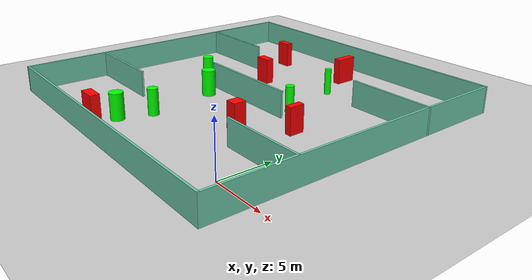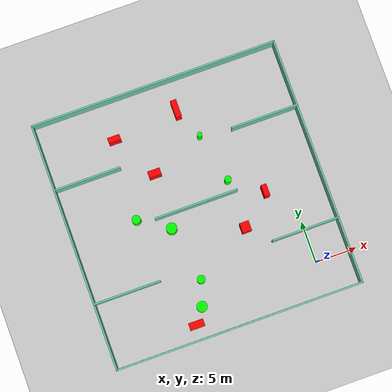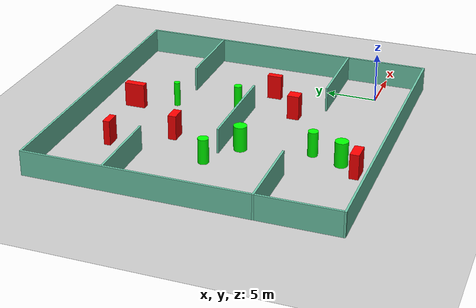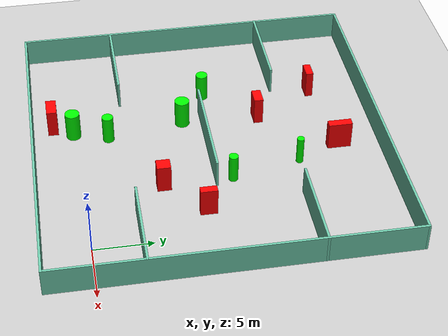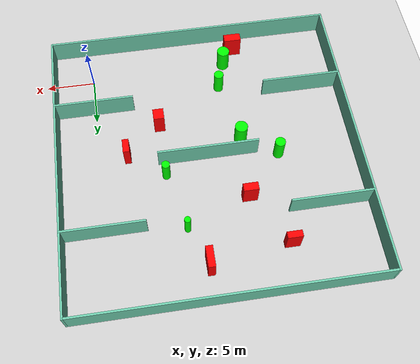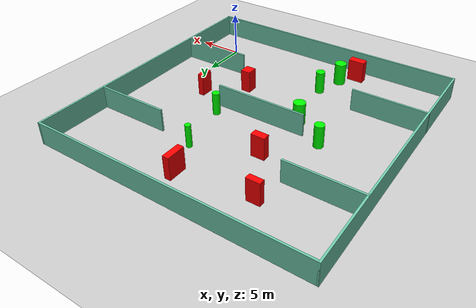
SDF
<sdf version="1.7">
 <world name="default">
  <light name="sun" type="directional">
   <pose>0 0 10 0 -0 0</pose>
   <diffuse>0.8 0.8 0.8 1</diffuse>
   <specular>0.2 0.2 0.2 1</specular>
   <attenuation>
    <range>1000</range>
    <constant>0.9</constant>
    <linear>0.01</linear>
    <quadratic>0.001</quadratic>
   </attenuation>
   <direction>-0.5 0.1 -0.9</direction>
   <spot><inner_angle>0</inner_angle><outer_angle>0</outer_angle><falloff>0</falloff></spot>
  </light>
  <model name="ground_plane">
   <static>1</static>
   <link name="link">
    <collision name="collision">
     <geometry><plane><normal>0 0 1</normal><size>100 100</size></plane></geometry>
     <surface>
      <contact><collide_bitmask>65535</collide_bitmask></contact>
      <friction><ode><mu>100</mu><mu2>50</mu2></ode></friction>
     </surface>
    </collision>
    <visual name="visual">
     <cast_shadows>0</cast_shadows>
     <geometry><plane><normal>0 0 1</normal><size>100 100</size></plane></geometry>
     <material>
      <script><uri>file://media/materials/scripts/gazebo.material</uri><name>Gazebo/Grey</name></script>
     </material>
    </visual>
   </link>
  </model>
  <gravity>0 0 -9.8</gravity>
  <magnetic_field>6e-06 2.3e-05 -4.2e-05</magnetic_field>
  <atmosphere type="adiabatic"/>
  <physics type="ode">
   <max_step_size>0.001</max_step_size>
   <real_time_factor>1</real_time_factor>
   <real_time_update_rate>1000</real_time_update_rate>
  </physics>
  <scene><ambient>0.4 0.4 0.4 1</ambient><background>0.7 0.7 0.7 1</background><shadows>1</shadows></scene>
  <spherical_coordinates>
   <surface_model>EARTH_WGS84</surface_model>
   <latitude_deg>0</latitude_deg>
   <longitude_deg>0</longitude_deg>
   <elevation>0</elevation>
   <heading_deg>0</heading_deg>
  </spherical_coordinates>
  <model name="my_base_walls">
   <link name="Wall_10">
    <collision name="Wall_10_Collision">
     <geometry><box><size>8.2 0.2 2.5</size></box></geometry>
     <pose>0 0 1.25 0 -0 0</pose>
    </collision>
    <visual name="Wall_10_Visual">
     <pose>0 0 1.25 0 -0 0</pose>
     <geometry><box><size>8.2 0.2 2.5</size></box></geometry>
     <material>
      <script><uri>file://media/materials/scripts/gazebo.material</uri><name>Gazebo/Grey</name></script>
      <ambient>0.435294 0.796078 0.67451 1</ambient>
     </material>
     <meta><layer>0</layer></meta>
    </visual>
    <pose>-11 -7 0 0 -0 0</pose>
   </link>
   <link name="Wall_12">
    <collision name="Wall_12_Collision">
     <geometry><box><size>8.2 0.2 2.5</size></box></geometry>
     <pose>0 0 1.25 0 -0 0</pose>
    </collision>
    <visual name="Wall_12_Visual">
     <pose>0 0 1.25 0 -0 0</pose>
     <geometry><box><size>8.2 0.2 2.5</size></box></geometry>
     <material>
      <script><uri>file://media/materials/scripts/gazebo.material</uri><name>Gazebo/Grey</name></script>
      <ambient>0.435294 0.796078 0.67451 1</ambient>
     </material>
     <meta><layer>0</layer></meta>
    </visual>
    <pose>-11 7 0 0 -0 0</pose>
   </link>
   <link name="Wall_14">
    <collision name="Wall_14_Collision">
     <geometry><box><size>8.2 0.2 2.5</size></box></geometry>
     <pose>0 0 1.25 0 -0 0</pose>
    </collision>
    <visual name="Wall_14_Visual">
     <pose>0 0 1.25 0 -0 0</pose>
     <geometry><box><size>8.2 0.2 2.5</size></box></geometry>
     <material>
      <script><uri>file://media/materials/scripts/gazebo.material</uri><name>Gazebo/Grey</name></script>
      <ambient>0.435294 0.796078 0.67451 1</ambient>
     </material>
     <meta><layer>0</layer></meta>
    </visual>
    <pose>11 7 0 0 -0 3.14159</pose>
   </link>
   <link name="Wall_16">
    <collision name="Wall_16_Collision">
     <geometry><box><size>10.2 0.2 2.5</size></box></geometry>
     <pose>0 0 1.25 0 -0 0</pose>
    </collision>
    <visual name="Wall_16_Visual">
     <pose>0 0 1.25 0 -0 0</pose>
     <geometry><box><size>10.2 0.2 2.5</size></box></geometry>
     <material>
      <script><uri>file://media/materials/scripts/gazebo.material</uri><name>Gazebo/Grey</name></script>
      <ambient>0.435294 0.796078 0.67451 1</ambient>
     </material>
     <meta><layer>0</layer></meta>
    </visual>
    <pose>0 0 0 0 -0 3.14159</pose>
   </link>
   <link name="Wall_2">
    <collision name="Wall_2_Collision">
     <geometry><box><size>30.2 0.2 2.5</size></box></geometry>
     <pose>0 0 1.25 0 -0 0</pose>
    </collision>
    <visual name="Wall_2_Visual">
     <pose>0 0 1.25 0 -0 0</pose>
     <geometry><box><size>30.2 0.2 2.5</size></box></geometry>
     <material>
      <script><uri>file://media/materials/scripts/gazebo.material</uri><name>Gazebo/Grey</name></script>
      <ambient>0.435294 0.796078 0.67451 1</ambient>
     </material>
     <meta><layer>0</layer></meta>
    </visual>
    <pose>0 -15 0 0 -0 3.14159</pose>
   </link>
   <link name="Wall_3">
    <collision name="Wall_3_Collision">
     <geometry><box><size>30.2 0.2 2.5</size></box></geometry>
     <pose>0 0 1.25 0 -0 0</pose>
    </collision>
    <visual name="Wall_3_Visual">
     <pose>0 0 1.25 0 -0 0</pose>
     <geometry><box><size>30.2 0.2 2.5</size></box></geometry>
     <material>
      <script><uri>file://media/materials/scripts/gazebo.material</uri><name>Gazebo/Grey</name></script>
      <ambient>0.435294 0.796078 0.67451 1</ambient>
     </material>
     <meta><layer>0</layer></meta>
    </visual>
    <pose>-15 0 0 0 -0 1.5708</pose>
   </link>
   <link name="Wall_4">
    <collision name="Wall_4_Collision">
     <geometry><box><size>30.2 0.2 2.5</size></box></geometry>
     <pose>0 0 1.25 0 -0 0</pose>
    </collision>
    <visual name="Wall_4_Visual">
     <pose>0 0 1.25 0 -0 0</pose>
     <geometry><box><size>30.2 0.2 2.5</size></box></geometry>
     <material>
      <script><uri>file://media/materials/scripts/gazebo.material</uri><name>Gazebo/Grey</name></script>
      <ambient>0.435294 0.796078 0.67451 1</ambient>
     </material>
     <meta><layer>0</layer></meta>
    </visual>
    <pose>0 15 0 0 -0 0</pose>
   </link>
   <link name="Wall_6">
    <collision name="Wall_6_Collision">
     <geometry><box><size>30.2 0.2 2.5</size></box></geometry>
     <pose>0 0 1.25 0 -0 0</pose>
    </collision>
    <visual name="Wall_6_Visual">
     <pose>0 0 1.25 0 -0 0</pose>
     <geometry><box><size>30.2 0.2 2.5</size></box></geometry>
     <material>
      <script><uri>file://media/materials/scripts/gazebo.material</uri><name>Gazebo/Grey</name></script>
      <ambient>0.435294 0.796078 0.67451 1</ambient>
     </material>
     <meta><layer>0</layer></meta>
    </visual>
    <pose>15 0 0 0 -0 1.5708</pose>
   </link>
   <link name="Wall_8">
    <collision name="Wall_8_Collision">
     <geometry><box><size>8.2 0.2 2.5</size></box></geometry>
     <pose>0 0 1.25 0 -0 0</pose>
    </collision>
    <visual name="Wall_8_Visual">
     <pose>0 0 1.25 0 -0 0</pose>
     <geometry><box><size>8.2 0.2 2.5</size></box></geometry>
     <material>
      <script><uri>file://media/materials/scripts/gazebo.material</uri><name>Gazebo/Grey</name></script>
      <ambient>0.435294 0.796078 0.67451 1</ambient>
     </material>
     <meta><layer>0</layer></meta>
    </visual>
    <pose>11 -7 0 0 -0 3.14159</pose>
   </link>
   <static>1</static>
   <pose>-11 11 0 0 -0 0</pose>
  </model>
  <model name="cylinder1">
   <static>1</static>
   <link name="link">
    <inertial>
     <mass>1</mass>
     <inertia><ixx>0.5</ixx><ixy>0</ixy><ixz>0</ixz><iyy>0.5</iyy><iyz>0</iyz><izz>1</izz></inertia>
    </inertial>
    <collision name="collision">
     <geometry><cylinder><radius>0.6405428195331779</radius><length>2.5</length></cylinder></geometry>
    </collision>
    <visual name="visual">
     <geometry><cylinder><radius>0.6405428195331779</radius><length>2.5</length></cylinder></geometry>
     <material>
      <ambient>0 1 0 1</ambient>
      <diffuse>0 1 0 1</diffuse>
      <specular>0.1 0.1 0.1 1</specular>
      <emissive>0 0 0 0</emissive>
     </material>
    </visual>
   </link>
   <pose>-14.359535074035836 -0.42092638623585543 1.25 0 0 0</pose>
  </model>
  <model name="cylinder2">
   <static>1</static>
   <link name="link">
    <inertial>
     <mass>1</mass>
     <inertia><ixx>0.5</ixx><ixy>0</ixy><ixz>0</ixz><iyy>0.5</iyy><iyz>0</iyz><izz>1</izz></inertia>
    </inertial>
    <collision name="collision">
     <geometry><cylinder><radius>0.6471875766967228</radius><length>2.5</length></cylinder></geometry>
    </collision>
    <visual name="visual">
     <geometry><cylinder><radius>0.6471875766967228</radius><length>2.5</length></cylinder></geometry>
     <material>
      <ambient>0 1 0 1</ambient>
      <diffuse>0 1 0 1</diffuse>
      <specular>0.1 0.1 0.1 1</specular>
      <emissive>0 0 0 0</emissive>
     </material>
    </visual>
   </link>
   <pose>-14.633865834970154 9.286482245848264 1.25 0 0 0</pose>
  </model>
  <model name="cylinder3">
   <static>1</static>
   <link name="link">
    <inertial>
     <mass>1</mass>
     <inertia><ixx>0.5</ixx><ixy>0</ixy><ixz>0</ixz><iyy>0.5</iyy><iyz>0</iyz><izz>1</izz></inertia>
    </inertial>
    <collision name="collision">
     <geometry><cylinder><radius>0.31029944565391615</radius><length>2.5</length></cylinder></geometry>
    </collision>
    <visual name="visual">
     <geometry><cylinder><radius>0.31029944565391615</radius><length>2.5</length></cylinder></geometry>
     <material>
      <ambient>0 1 0 1</ambient>
      <diffuse>0 1 0 1</diffuse>
      <specular>0.1 0.1 0.1 1</specular>
      <emissive>0 0 0 0</emissive>
     </material>
    </visual>
   </link>
   <pose>-7.8860597987850145 18.50656944982736 1.25 0 0 0</pose>
  </model>
  <model name="cylinder4">
   <static>1</static>
   <link name="link">
    <inertial>
     <mass>1</mass>
     <inertia><ixx>0.5</ixx><ixy>0</ixy><ixz>0</ixz><iyy>0.5</iyy><iyz>0</iyz><izz>1</izz></inertia>
    </inertial>
    <collision name="collision">
     <geometry><cylinder><radius>0.5228051967270515</radius><length>2.5</length></cylinder></geometry>
    </collision>
    <visual name="visual">
     <geometry><cylinder><radius>0.5228051967270515</radius><length>2.5</length></cylinder></geometry>
     <material>
      <ambient>0 1 0 1</ambient>
      <diffuse>0 1 0 1</diffuse>
      <specular>0.1 0.1 0.1 1</specular>
      <emissive>0 0 0 0</emissive>
     </material>
    </visual>
   </link>
   <pose>-18.162219118533663 11.603959090139405 1.25 0 0 0</pose>
  </model>
  <model name="cylinder5">
   <static>1</static>
   <link name="link">
    <inertial>
     <mass>1</mass>
     <inertia><ixx>0.5</ixx><ixy>0</ixy><ixz>0</ixz><iyy>0.5</iyy><iyz>0</iyz><izz>1</izz></inertia>
    </inertial>
    <collision name="collision">
     <geometry><cylinder><radius>0.4940769330600653</radius><length>2.5</length></cylinder></geometry>
    </collision>
    <visual name="visual">
     <geometry><cylinder><radius>0.4940769330600653</radius><length>2.5</length></cylinder></geometry>
     <material>
      <ambient>0 1 0 1</ambient>
      <diffuse>0 1 0 1</diffuse>
      <specular>0.1 0.1 0.1 1</specular>
      <emissive>0 0 0 0</emissive>
     </material>
    </visual>
   </link>
   <pose>-13.396402139969512 2.578021290777558 1.25 0 0 0</pose>
  </model>
  <model name="cylinder6">
   <static>1</static>
   <link name="link">
    <inertial>
     <mass>1</mass>
     <inertia><ixx>0.5</ixx><ixy>0</ixy><ixz>0</ixz><iyy>0.5</iyy><iyz>0</iyz><izz>1</izz></inertia>
    </inertial>
    <collision name="collision">
     <geometry><cylinder><radius>0.4057778608266356</radius><length>2.5</length></cylinder></geometry>
    </collision>
    <visual name="visual">
     <geometry><cylinder><radius>0.4057778608266356</radius><length>2.5</length></cylinder></geometry>
     <material>
      <ambient>0 1 0 1</ambient>
      <diffuse>0 1 0 1</diffuse>
      <specular>0.1 0.1 0.1 1</specular>
      <emissive>0 0 0 0</emissive>
     </material>
    </visual>
   </link>
   <pose>-6.546783761988689 12.48063853403077 1.25 0 0 0</pose>
  </model>
  <model name="box1">
   <static>1</static>
   <link name="link">
    <inertial>
     <mass>1</mass>
     <inertia><ixx>0.083</ixx><ixy>0</ixy><ixz>0</ixz><iyy>0.083</iyy><iyz>0</iyz><izz>0.083</izz></inertia>
    </inertial>
    <collision name="collision">
     <geometry><box><size>0.7028510672963405 2.059783181638439 2.5</size></box></geometry>
    </collision>
    <visual name="visual">
     <geometry><box><size>0.7028510672963405 2.059783181638439 2.5</size></box></geometry>
     <material>
      <ambient>1 0 0 1</ambient>
      <diffuse>1 0 0 1</diffuse>
      <specular>0.1 0.1 0.1 1</specular>
      <emissive>0 0 0 0</emissive>
     </material>
    </visual>
    <sensor name="my_contact" type="contact">
     <contact><collision>box_collision</collision><topic>__default_topic__</topic></contact>
    </sensor>
   </link>
   <pose>-9.460363700070118 22.333160498498014 1.25 0 0 0</pose>
  </model>
  <model name="box2">
   <static>1</static>
   <link name="link">
    <inertial>
     <mass>1</mass>
     <inertia><ixx>0.083</ixx><ixy>0</ixy><ixz>0</ixz><iyy>0.083</iyy><iyz>0</iyz><izz>0.083</izz></inertia>
    </inertial>
    <collision name="collision">
     <geometry><box><size>1.7899760088929753 0.8912074378180854 2.5</size></box></geometry>
    </collision>
    <visual name="visual">
     <geometry><box><size>1.7899760088929753 0.8912074378180854 2.5</size></box></geometry>
     <material>
      <ambient>1 0 0 1</ambient>
      <diffuse>1 0 0 1</diffuse>
      <specular>0.1 0.1 0.1 1</specular>
      <emissive>0 0 0 0</emissive>
     </material>
    </visual>
    <sensor name="my_contact" type="contact">
     <contact><collision>box_collision</collision><topic>__default_topic__</topic></contact>
    </sensor>
   </link>
   <pose>-15.631582258423279 -2.175329686298683 1.25 0 0 0</pose>
  </model>
  <model name="box3">
   <static>1</static>
   <link name="link">
    <inertial>
     <mass>1</mass>
     <inertia><ixx>0.083</ixx><ixy>0</ixy><ixz>0</ixz><iyy>0.083</iyy><iyz>0</iyz><izz>0.083</izz></inertia>
    </inertial>
    <collision name="collision">
     <geometry><box><size>1.095972221612593 1.187223037586877 2.5</size></box></geometry>
    </collision>
    <visual name="visual">
     <geometry><box><size>1.095972221612593 1.187223037586877 2.5</size></box></geometry>
     <material>
      <ambient>1 0 0 1</ambient>
      <diffuse>1 0 0 1</diffuse>
      <specular>0.1 0.1 0.1 1</specular>
      <emissive>0 0 0 0</emissive>
     </material>
    </visual>
    <sensor name="my_contact" type="contact">
     <contact><collision>box_collision</collision><topic>__default_topic__</topic></contact>
    </sensor>
   </link>
   <pose>-6.49475283790726 6.563956911159007 1.25 0 0 0</pose>
  </model>
  <model name="box4">
   <static>1</static>
   <link name="link">
    <inertial>
     <mass>1</mass>
     <inertia><ixx>0.083</ixx><ixy>0</ixy><ixz>0</ixz><iyy>0.083</iyy><iyz>0</iyz><izz>0.083</izz></inertia>
    </inertial>
    <collision name="collision">
     <geometry><box><size>0.6468969885055016 1.4406291268118918 2.5</size></box></geometry>
    </collision>
    <visual name="visual">
     <geometry><box><size>0.6468969885055016 1.4406291268118918 2.5</size></box></geometry>
     <material>
      <ambient>1 0 0 1</ambient>
      <diffuse>1 0 0 1</diffuse>
      <specular>0.1 0.1 0.1 1</specular>
      <emissive>0 0 0 0</emissive>
     </material>
    </visual>
    <sensor name="my_contact" type="contact">
     <contact><collision>box_collision</collision><topic>__default_topic__</topic></contact>
    </sensor>
   </link>
   <pose>-2.8761363449699573 9.78170861761013 1.25 0 0 0</pose>
  </model>
  <model name="box5">
   <static>1</static>
   <link name="link">
    <inertial>
     <mass>1</mass>
     <inertia><ixx>0.083</ixx><ixy>0</ixy><ixz>0</ixz><iyy>0.083</iyy><iyz>0</iyz><izz>0.083</izz></inertia>
    </inertial>
    <collision name="collision">
     <geometry><box><size>1.4701968731684252 0.64779148450494 2.5</size></box></geometry>
    </collision>
    <visual name="visual">
     <geometry><box><size>1.4701968731684252 0.64779148450494 2.5</size></box></geometry>
     <material>
      <ambient>1 0 0 1</ambient>
      <diffuse>1 0 0 1</diffuse>
      <specular>0.1 0.1 0.1 1</specular>
      <emissive>0 0 0 0</emissive>
     </material>
    </visual>
    <sensor name="my_contact" type="contact">
     <contact><collision>box_collision</collision><topic>__default_topic__</topic></contact>
    </sensor>
   </link>
   <pose>-17.452903811108577 21.382700165212967 1.25 0 0 0</pose>
  </model>
  <model name="box6">
   <static>1</static>
   <link name="link">
    <inertial>
     <mass>1</mass>
     <inertia><ixx>0.083</ixx><ixy>0</ixy><ixz>0</ixz><iyy>0.083</iyy><iyz>0</iyz><izz>0.083</izz></inertia>
    </inertial>
    <collision name="collision">
     <geometry><box><size>1.4886846807800476 0.7944580342894539 2.5</size></box></geometry>
    </collision>
    <visual name="visual">
     <geometry><box><size>1.4886846807800476 0.7944580342894539 2.5</size></box></geometry>
     <material>
      <ambient>1 0 0 1</ambient>
      <diffuse>1 0 0 1</diffuse>
      <specular>0.1 0.1 0.1 1</specular>
      <emissive>0 0 0 0</emissive>
     </material>
    </visual>
    <sensor name="my_contact" type="contact">
     <contact><collision>box_collision</collision><topic>__default_topic__</topic></contact>
    </sensor>
   </link>
   <pose>-14.353809504135068 16.029725130208117 1.25 0 0 0</pose>
  </model>
 </world>
</sdf>
